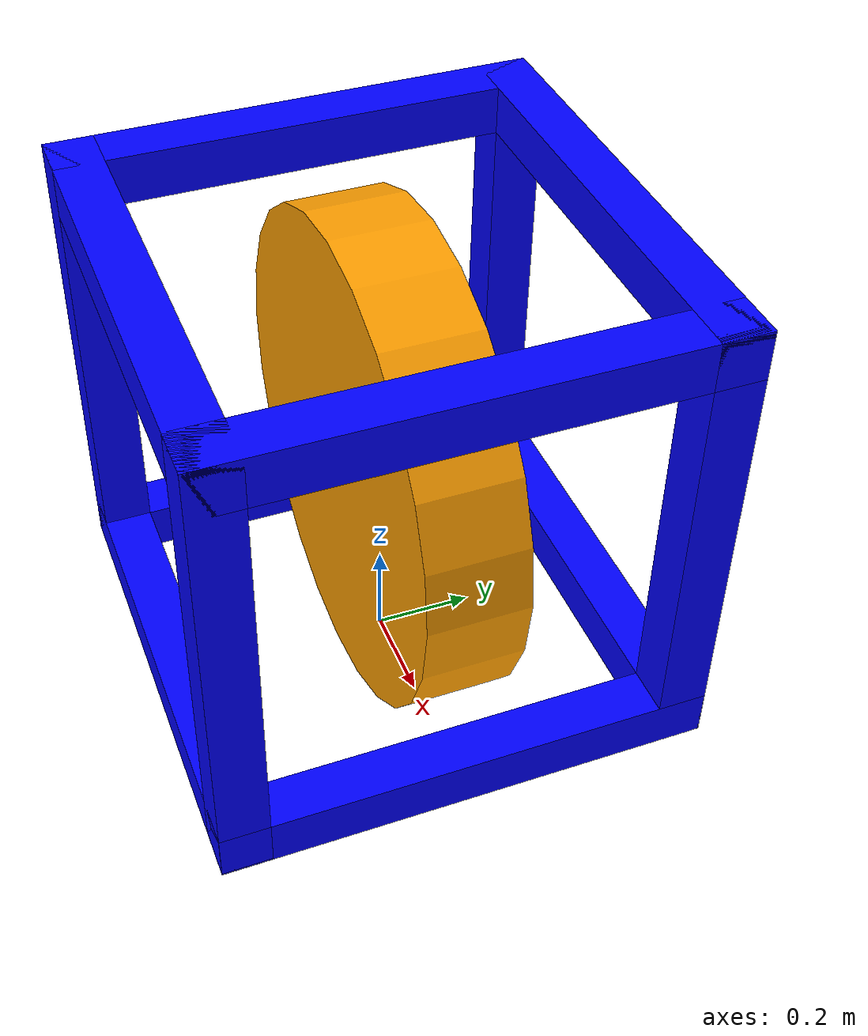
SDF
<?xml version='1.0' encoding='utf-8'?>
<sdf version="1.7">&lt;?xml version="1.0"?&gt;
<world name="moving_cube">
  <model name="robot">
    <link name="cube_frame">
      <inertial>
        <pose>0 0 0.5 0 0 0</pose>
        <mass>1</mass>
        <inertia>
          <ixx>0.10000000000000001</ixx>
          <ixy>0</ixy>
          <ixz>0</ixz>
          <iyy>0.10000000000000001</iyy>
          <iyz>0</iyz>
          <izz>0.10000000000000001</izz>
        </inertia>
      </inertial>
      <collision name="cube_frame_fixed_joint_lump__collision_collision">
        <pose>0 0 0.5 0 0 0</pose>
        <geometry>
          <box>
            <size>1 1 1</size>
          </box>
        </geometry>
      </collision>
      <visual name="cube_frame_fixed_joint_lump__ZXY_visual">
        <pose>0.45 0.45 0.5 0 0 0</pose>
        <geometry>
          <box>
            <size>0.1 0.1 1</size>
          </box>
        </geometry>
        <material>
          <diffuse>0 0 1 1</diffuse>
          <ambient>0 0 1 1</ambient>
        </material>
      </visual>
      <visual name="cube_frame_fixed_joint_lump__ZX_Y_visual_1">
        <pose>-0.45 0.45 0.5 0 0 0</pose>
        <geometry>
          <box>
            <size>0.1 0.1 1</size>
          </box>
        </geometry>
        <material>
          <diffuse>0 0 1 1</diffuse>
          <ambient>0 0 1 1</ambient>
        </material>
      </visual>
      <visual name="cube_frame_fixed_joint_lump__ZXY__visual_2">
        <pose>0.45 -0.45 0.5 0 0 0</pose>
        <geometry>
          <box>
            <size>0.1 0.1 1</size>
          </box>
        </geometry>
        <material>
          <diffuse>0 0 1 1</diffuse>
          <ambient>0 0 1 1</ambient>
        </material>
      </visual>
      <visual name="cube_frame_fixed_joint_lump__ZX_Y__visual_3">
        <pose>-0.45 -0.45 0.5 0 0 0</pose>
        <geometry>
          <box>
            <size>0.1 0.1 1</size>
          </box>
        </geometry>
        <material>
          <diffuse>0 0 1 1</diffuse>
          <ambient>0 0 1 1</ambient>
        </material>
      </visual>
      <visual name="cube_frame_fixed_joint_lump__XYZ_visual_4">
        <pose>0 0.45 0.95 0 1.570796326794897 0</pose>
        <geometry>
          <box>
            <size>0.1 0.1 1</size>
          </box>
        </geometry>
        <material>
          <diffuse>0 0 1 1</diffuse>
          <ambient>0 0 1 1</ambient>
        </material>
      </visual>
      <visual name="cube_frame_fixed_joint_lump__XY_Z_visual_5">
        <pose>0 -0.45 0.95 0 1.570796326794897 0</pose>
        <geometry>
          <box>
            <size>0.1 0.1 1</size>
          </box>
        </geometry>
        <material>
          <diffuse>0 0 1 1</diffuse>
          <ambient>0 0 1 1</ambient>
        </material>
      </visual>
      <visual name="cube_frame_fixed_joint_lump__XYZ__visual_6">
        <pose>0 0.45 0.05 0 1.570796326794897 0</pose>
        <geometry>
          <box>
            <size>0.1 0.1 1</size>
          </box>
        </geometry>
        <material>
          <diffuse>0 0 1 1</diffuse>
          <ambient>0 0 1 1</ambient>
        </material>
      </visual>
      <visual name="cube_frame_fixed_joint_lump__XY_Z__visual_7">
        <pose>0 -0.45 0.05 0 1.570796326794897 0</pose>
        <geometry>
          <box>
            <size>0.1 0.1 1</size>
          </box>
        </geometry>
        <material>
          <diffuse>0 0 1 1</diffuse>
          <ambient>0 0 1 1</ambient>
        </material>
      </visual>
      <visual name="cube_frame_fixed_joint_lump__YZX_visual_8">
        <pose>0.45 0 0.95 1.570796326794896 0 0</pose>
        <geometry>
          <box>
            <size>0.1 0.1 1</size>
          </box>
        </geometry>
        <material>
          <diffuse>0 0 1 1</diffuse>
          <ambient>0 0 1 1</ambient>
        </material>
      </visual>
      <visual name="cube_frame_fixed_joint_lump__YZ_X_visual_9">
        <pose>0.45 0 0.05 1.570796326794896 0 0</pose>
        <geometry>
          <box>
            <size>0.1 0.1 1</size>
          </box>
        </geometry>
        <material>
          <diffuse>0 0 1 1</diffuse>
          <ambient>0 0 1 1</ambient>
        </material>
      </visual>
      <visual name="cube_frame_fixed_joint_lump__YZX__visual_10">
        <pose>-0.45 0 0.95 1.570796326794896 0 0</pose>
        <geometry>
          <box>
            <size>0.1 0.1 1</size>
          </box>
        </geometry>
        <material>
          <diffuse>0 0 1 1</diffuse>
          <ambient>0 0 1 1</ambient>
        </material>
      </visual>
      <visual name="cube_frame_fixed_joint_lump__YZ_X__visual_11">
        <pose>-0.45 0 0.05 1.570796326794896 0 0</pose>
        <geometry>
          <box>
            <size>0.1 0.1 1</size>
          </box>
        </geometry>
        <material>
          <diffuse>0 0 1 1</diffuse>
          <ambient>0 0 1 1</ambient>
        </material>
      </visual>
    </link>
    <joint name="cube_disc_joint" type="revolute">
      <pose relative_to="cube_frame">0 0 0.5 0 0 0</pose>
      <parent>cube_frame</parent>
      <child>disc_link</child>
      <axis>
        <xyz>0 1 0</xyz>
        <limit>
          <lower>0</lower>
          <upper>0</upper>
          <effort>1000</effort>
          <velocity>10</velocity>
        </limit>
        <dynamics>
          <spring_reference>0</spring_reference>
          <spring_stiffness>0</spring_stiffness>
        </dynamics>
      </axis>
    </joint>
    <link name="disc_link">
      <pose relative_to="cube_disc_joint">0 0 0 0 0 0</pose>
      <inertial>
        <pose>0 0 0 0 0 0</pose>
        <mass>1</mass>
        <inertia>
          <ixx>0.10000000000000001</ixx>
          <ixy>0</ixy>
          <ixz>0</ixz>
          <iyy>0.10000000000000001</iyy>
          <iyz>0</iyz>
          <izz>0.10000000000000001</izz>
        </inertia>
      </inertial>
      <collision name="disc_link_fixed_joint_lump__disc_collision_collision">
        <pose>0 0 0 0 0 0</pose>
        <geometry>
          <cylinder>
            <length>0.20000000000000001</length>
            <radius>0.5</radius>
          </cylinder>
        </geometry>
      </collision>
      <visual name="disc_link_fixed_joint_lump__disc_visual">
        <pose>0 0 0 1.570796326794896 0 0</pose>
        <geometry>
          <cylinder>
            <length>0.20000000000000001</length>
            <radius>0.5</radius>
          </cylinder>
        </geometry>
        <material>
          <diffuse>1 0.625 0 1</diffuse>
          <ambient>1 0.625 0 1</ambient>
        </material>
      </visual>
    </link>
  </model>
</world></sdf>
